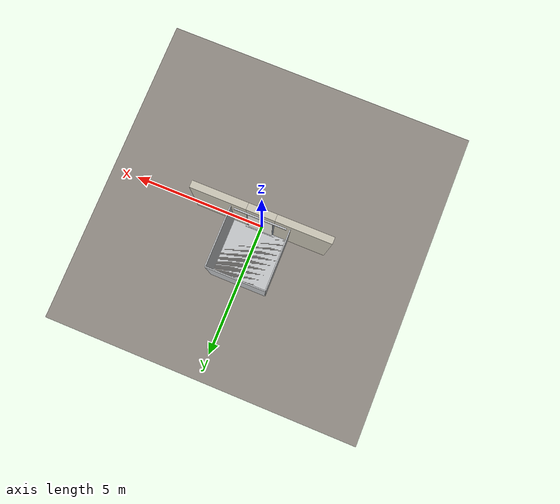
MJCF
<?xml version="1.0" ?>
<mujoco model="db0811_elevator_simple">
  <compiler angle="radian" meshdir="../../hardware" texturedir="../../textures" autolimits="true" inertiafromgeom="false"/>
  <option timestep="0.002" integrator="implicitfast" cone="elliptic" impratio="10" noslip_iterations="3">
    <flag multiccd="enable"/>
  </option>
  <size memory="16M"/>
  <default>
    <geom condim="4" solref="0.005 1" solimp="0.95 0.99 0.001"/>
    <joint solreflimit="0.005 1" solimplimit="0.95 0.99 0.001"/>
    <tendon solreflimit="0.005 1"/>
    <equality solref="0.002 1"/>
  </default>
  <visual>
    <headlight ambient="0.4 0.4 0.4" diffuse="0.7 0.7 0.7" specular="0.2 0.2 0.2"/>
    <quality shadowsize="4096"/>
    <map znear="0.01" zfar="60"/>
  </visual>
  <asset>
    <material name="mat_floor" rgba="0.55 0.53 0.5 1" specular="0.2" shininess="0.15" reflectance="0"/>
    <material name="mat_wall" rgba="0.78 0.76 0.7 1" specular="0.2" shininess="0.1" reflectance="0"/>
    <material name="mat_frame" rgba="0.45 0.48 0.52 1" specular="0.32" shininess="0.6" reflectance="0.08"/>
    <material name="mat_track" rgba="0.8 0.81 0.83 1" specular="0.8" shininess="0.6" reflectance="0.4"/>
    <material name="mat_leaf_a" rgba="0.93 0.93 0.91 1" specular="0.23" shininess="0.44" reflectance="0.02"/>
    <material name="mat_roller" rgba="0.65 0.66 0.68 1" specular="0.74" shininess="0.5" reflectance="0.36"/>
    <material name="mat_leaf_b" rgba="0.93 0.93 0.91 1" specular="0.23" shininess="0.44" reflectance="0.02"/>
    <material name="mat_sill" rgba="0.75 0.76 0.77 1" specular="0.8" shininess="0.65" reflectance="0.4"/>
    <material name="mat_wallreader" rgba="0.05 0.05 0.05 1" specular="0.38" shininess="0.3" reflectance="0.12"/>
    <material name="mat_callbtn" rgba="0.9 0.9 0.9 1" specular="0.68" shininess="0.7" reflectance="0.32"/>
    <material name="mat_hook" rgba="0.75 0.76 0.77 1" specular="0.8" shininess="0.65" reflectance="0.4"/>
    <texture name="skybox" type="skybox" builtin="gradient" rgb1="0.6 0.7 0.85" rgb2="0.9 0.92 0.95" width="256" height="256"/>
  </asset>
  <worldbody>
    <light name="sun" pos="1.5 -2.5 4" dir="-0.3 0.5 -0.8" directional="true" diffuse="0.8 0.8 0.8" specular="0.3 0.3 0.3" castshadow="true"/>
    <light name="fill" pos="-1.5 2.5 3" dir="0.3 -0.5 -0.7" directional="true" diffuse="0.35 0.35 0.4" castshadow="false"/>
    <camera name="robot_view" pos="0 -2.93125 2.05075" xyaxes="1 0 0 0 0.26963 0.962964" fovy="52"/>
    <camera name="far_view" pos="0 2.93125 2.05075" xyaxes="-1 0 0 0 -0.26963 0.962964" fovy="52"/>
    <camera name="iso" pos="2.22775 -2.46225 2.51975" xyaxes="0.741536 0.670913 0 -0.242917 0.268487 0.932151" fovy="46"/>
    <camera name="detail_handle" pos="0.48 -0.8 1.28" xyaxes="0.97561 0.219512 0 -0.070934 0.315262 0.94635" fovy="38"/>
    <geom name="floor" type="box" size="6 6 0.05" pos="0 0 -0.05" material="mat_floor" group="0" contype="1" conaffinity="1" friction="0.8 0.005 0.0001" density="2400"/>
    <geom name="wall_left" type="box" size="0.9975 0.125 1.53" pos="-1.5025 0 1.53" material="mat_wall" group="0" contype="1" conaffinity="1" friction="0.6 0.005 0.0001" density="800"/>
    <geom name="wall_right" type="box" size="0.9975 0.125 1.53" pos="1.5025 0 1.53" material="mat_wall" group="0" contype="1" conaffinity="1" friction="0.6 0.005 0.0001" density="800"/>
    <geom name="wall_header" type="box" size="0.505 0.125 0.2775" pos="0 0 2.7825" material="mat_wall" group="0" contype="1" conaffinity="1" friction="0.6 0.005 0.0001" density="800"/>
    <geom name="jamb_l" type="box" size="0.0225 0.125 1.23" pos="-0.4825 0 1.23" material="mat_frame" group="0" contype="1" conaffinity="1" friction="0.6 0.005 0.0001" density="300"/>
    <geom name="jamb_r" type="box" size="0.0225 0.125 1.23" pos="0.4825 0 1.23" material="mat_frame" group="0" contype="1" conaffinity="1" friction="0.6 0.005 0.0001" density="300"/>
    <geom name="jamb_head" type="box" size="0.505 0.125 0.0225" pos="0 0 2.4825" material="mat_frame" group="0" contype="1" conaffinity="1" friction="0.6 0.005 0.0001" density="300"/>
    <geom name="leaf_a_track_header" type="box" size="0.495 0.025 0.04" pos="-0.445 0.152 2.545" material="mat_track" group="0" contype="1" conaffinity="1" friction="0.6 0.005 0.0001" density="2700"/>
    <geom name="leaf_b_track_header" type="box" size="0.495 0.025 0.04" pos="0.445 0.152 2.545" material="mat_track" group="0" contype="1" conaffinity="1" friction="0.6 0.005 0.0001" density="2700"/>
    <geom name="sill" type="box" size="0.56 0.1285 0.01" pos="0 0.0685 0.01" material="mat_sill" group="0" contype="1" conaffinity="1" friction="0.6 0.005 0.0001" density="7900"/>
    <geom name="car_floor" type="box" size="1.06 1.1 0.01" pos="0 1.2 -0.01" material="mat_sill" group="0" contype="1" conaffinity="1" friction="0.6 0.005 0.0001" density="7900"/>
    <geom name="car_wall_l" type="box" size="0.02 1.1 1.33" pos="-1.06 1.2 1.33" material="mat_sill" group="0" contype="1" conaffinity="1" friction="0.6 0.005 0.0001" density="7900"/>
    <geom name="car_wall_r" type="box" size="0.02 1.1 1.33" pos="1.06 1.2 1.33" material="mat_sill" group="0" contype="1" conaffinity="1" friction="0.6 0.005 0.0001" density="7900"/>
    <geom name="car_back" type="box" size="1.06 0.02 1.33" pos="0 2.3 1.33" material="mat_sill" group="0" contype="1" conaffinity="1" friction="0.6 0.005 0.0001" density="7900"/>
    <geom name="call_plate" type="box" size="0.03 0.003 0.05" pos="0.71 -0.128 1.05" material="mat_wallreader" group="1" contype="0" conaffinity="0" density="1000"/>
    <site name="approach_point" pos="0 -1.5 0" quat="1 0 0 0" size="0.05" rgba="0.2 0.9 0.2 0.5" group="4"/>
    <site name="goal_point" pos="0 1.5 0" quat="1 0 0 0" size="0.05" rgba="0.2 0.9 0.2 0.5" group="4"/>
    <site name="door_plane_center" pos="0 0 1.23" quat="1 0 0 0" size="0.02" rgba="0.2 0.9 0.2 0.5" group="4"/>
    <body name="call_button" pos="0.71 -0.131 1.05">
      <inertial pos="0 -0.003 0" mass="0.004241" quat="0 0 0.707107 -0.707107" diaginertia="0.000000251 0.000000251 0.000000477"/>
      <joint name="call_button_slide" type="slide" axis="0 1 0" limited="true" range="0 0.003" damping="1" stiffness="1500" springref="-0.003" armature="0.1"/>
      <geom name="call_button_geom" type="cylinder" size="0.015 0.003" pos="0 -0.003 0" quat="0.707107 -0.707107 0 0" material="mat_callbtn" group="0" contype="1" conaffinity="1" friction="0.6 0.005 0.0001" density="1000"/>
    </body>
    <body name="leaf_a" pos="-0.225 0.152 0">
      <inertial pos="0 0 1.26447" mass="32.673879" quat="-0.5 -0.5 -0.5 0.5" diaginertia="0.548440292 16.568043075 17.111705309"/>
      <joint name="leaf_a_slide" type="slide" axis="-1 0 0" limited="true" range="0 0.44" damping="3.6638" frictionloss="5" armature="0.5"/>
      <geom name="leaf_a_slab" type="box" size="0.225 0.015 1.2" pos="0 0 1.23" material="mat_leaf_a" group="0" contype="1" conaffinity="1" friction="0.35 0.005 0.0001" density="1"/>
      <geom name="leaf_a_carrier_0" type="box" size="0.02 0.005 0.0655" pos="-0.105 0 2.4355" material="mat_roller" group="1" contype="0" conaffinity="0" density="7850"/>
      <geom name="leaf_a_carrier_wheel_0" type="cylinder" size="0.014 0.006" pos="-0.105 0 2.491" quat="0.707107 -0.707107 0 0" material="mat_roller" group="1" contype="0" conaffinity="0" density="7850"/>
      <geom name="leaf_a_carrier_1" type="box" size="0.02 0.005 0.0655" pos="0.105 0 2.4355" material="mat_roller" group="1" contype="0" conaffinity="0" density="7850"/>
      <geom name="leaf_a_carrier_wheel_1" type="cylinder" size="0.014 0.006" pos="0.105 0 2.491" quat="0.707107 -0.707107 0 0" material="mat_roller" group="1" contype="0" conaffinity="0" density="7850"/>
      <site name="leaf_a_edge_mid" pos="0.225 0 1.23" quat="1 0 0 0" size="0.02" rgba="0.2 0.9 0.2 0.5" group="4"/>
    </body>
    <body name="leaf_b" pos="0.225 0.152 0">
      <inertial pos="0 0 1.26447" mass="32.673879" quat="-0.5 -0.5 -0.5 0.5" diaginertia="0.548440292 16.568043075 17.111705309"/>
      <joint name="leaf_b_slide" type="slide" axis="1 0 0" limited="true" range="0 0.44" damping="3.6638" frictionloss="5" armature="0.5"/>
      <geom name="leaf_b_slab" type="box" size="0.225 0.015 1.2" pos="0 0 1.23" material="mat_leaf_b" group="0" contype="1" conaffinity="1" friction="0.35 0.005 0.0001" density="1"/>
      <geom name="leaf_b_carrier_0" type="box" size="0.02 0.005 0.0655" pos="-0.105 0 2.4355" material="mat_roller" group="1" contype="0" conaffinity="0" density="7850"/>
      <geom name="leaf_b_carrier_wheel_0" type="cylinder" size="0.014 0.006" pos="-0.105 0 2.491" quat="0.707107 -0.707107 0 0" material="mat_roller" group="1" contype="0" conaffinity="0" density="7850"/>
      <geom name="leaf_b_carrier_1" type="box" size="0.02 0.005 0.0655" pos="0.105 0 2.4355" material="mat_roller" group="1" contype="0" conaffinity="0" density="7850"/>
      <geom name="leaf_b_carrier_wheel_1" type="cylinder" size="0.014 0.006" pos="0.105 0 2.491" quat="0.707107 -0.707107 0 0" material="mat_roller" group="1" contype="0" conaffinity="0" density="7850"/>
      <site name="leaf_b_edge_mid" pos="-0.225 0 1.23" quat="1 0 0 0" size="0.02" rgba="0.2 0.9 0.2 0.5" group="4"/>
    </body>
  </worldbody>
  <equality>
    <weld name="leaf_a_interlock_hold" body1="leaf_a" body2="world" active="true"/>
    <weld name="leaf_b_interlock_hold" body1="leaf_b" body2="world" active="true"/>
    <joint name="center_couple" joint1="leaf_b_slide" joint2="leaf_a_slide" polycoef="0 1 0 0 0" active="true"/>
  </equality>
  <actuator>
    <position name="leaf_a_drive" joint="leaf_a_slide" kp="400" kv="60" forcerange="-135 135" ctrlrange="0 0.44"/>
    <position name="leaf_b_drive" joint="leaf_b_slide" kp="400" kv="60" forcerange="-135 135" ctrlrange="0 0.44"/>
  </actuator>
  <sensor>
    <jointpos name="leaf_a_slide_pos" joint="leaf_a_slide"/>
    <jointvel name="leaf_a_slide_vel" joint="leaf_a_slide"/>
    <jointpos name="leaf_b_slide_pos" joint="leaf_b_slide"/>
    <jointvel name="leaf_b_slide_vel" joint="leaf_b_slide"/>
    <jointpos name="call_button_slide_pos" joint="call_button_slide"/>
    <jointvel name="call_button_slide_vel" joint="call_button_slide"/>
  </sensor>
</mujoco>
